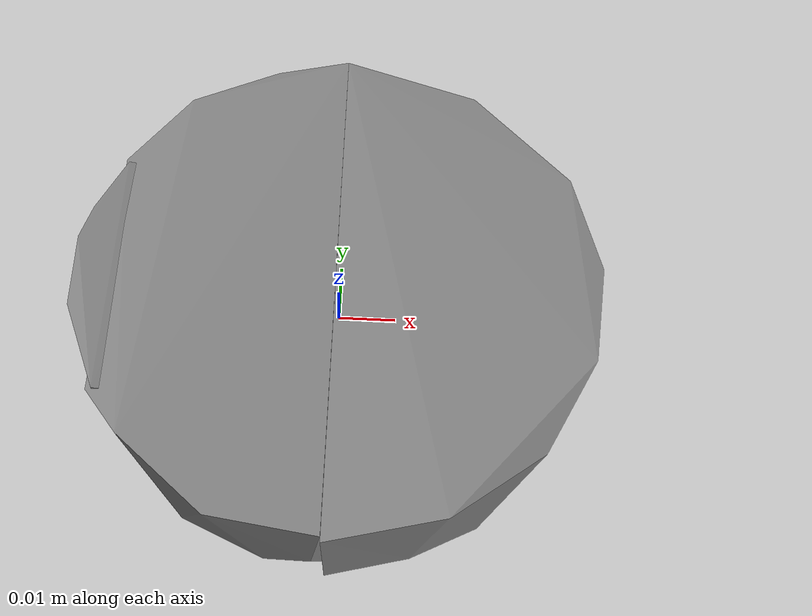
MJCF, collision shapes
<mujoco model="tuna_fish_can">
  <compiler angle="radian" />

  <asset>
    <mesh name="tuna_fish_can_visual_mesh" file="tuna_fish_can/textured.obj" />
    <mesh name="tuna_fish_can_collision_mesh_0" file="tuna_fish_can/textured_coacd_0.stl" />
    <mesh name="tuna_fish_can_collision_mesh_1" file="tuna_fish_can/textured_coacd_1.stl" />
    <mesh name="tuna_fish_can_collision_mesh_2" file="tuna_fish_can/textured_coacd_2.stl" />
    <mesh name="tuna_fish_can_collision_mesh_3" file="tuna_fish_can/textured_coacd_3.stl" />
    <texture name="tuna_fish_can_texture" type="2d" file="tuna_fish_can/texture_map.png" />
    <material name="tuna_fish_can_material" texture="tuna_fish_can_texture" />
  </asset>

  <worldbody>
    <body name="tuna_fish_can" pos="0 0 0" euler="0 0 0">
      <freejoint name="tuna_fish_can_joint" />
      <geom name="tuna_fish_can_visual_geom" type="mesh" mesh="tuna_fish_can_visual_mesh" material="tuna_fish_can_material" pos="0.025996325377627645 0.02214035959406331 -0.012989508195911936" euler="0 0 0" contype="0" conaffinity="0" group="0" />
      <geom name="tuna_fish_can_collision_geom_0" type="mesh" mesh="tuna_fish_can_collision_mesh_0" pos="0.025996325377627645 0.02214035959406331 -0.012989508195911936" euler="0 0 0" contype="1" conaffinity="1" group="3" />
      <geom name="tuna_fish_can_collision_geom_1" type="mesh" mesh="tuna_fish_can_collision_mesh_1" pos="0.025996325377627645 0.02214035959406331 -0.012989508195911936" euler="0 0 0" contype="1" conaffinity="1" group="3" />
      <geom name="tuna_fish_can_collision_geom_2" type="mesh" mesh="tuna_fish_can_collision_mesh_2" pos="0.025996325377627645 0.02214035959406331 -0.012989508195911936" euler="0 0 0" contype="1" conaffinity="1" group="3" />
      <geom name="tuna_fish_can_collision_geom_3" type="mesh" mesh="tuna_fish_can_collision_mesh_3" pos="0.025996325377627645 0.02214035959406331 -0.012989508195911936" euler="0 0 0" contype="1" conaffinity="1" group="3" />
      <inertial pos="0 0 0" euler="0 0 0" mass="0.171" diaginertia="0.001 0.001 0.001" />
    </body>
  </worldbody>
</mujoco>
